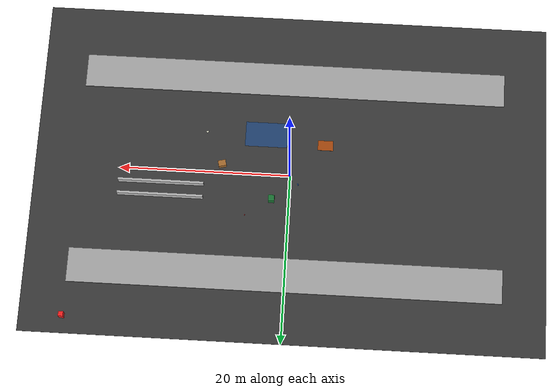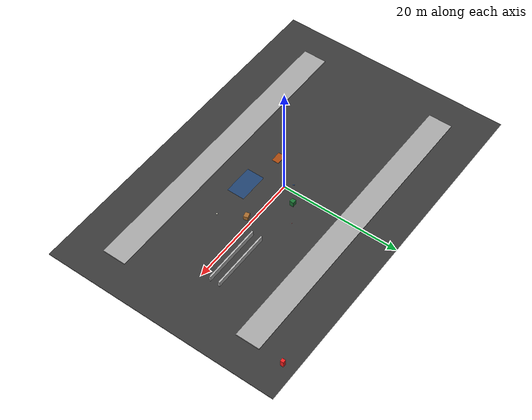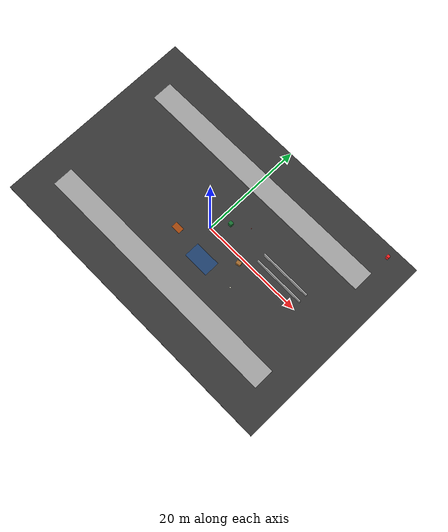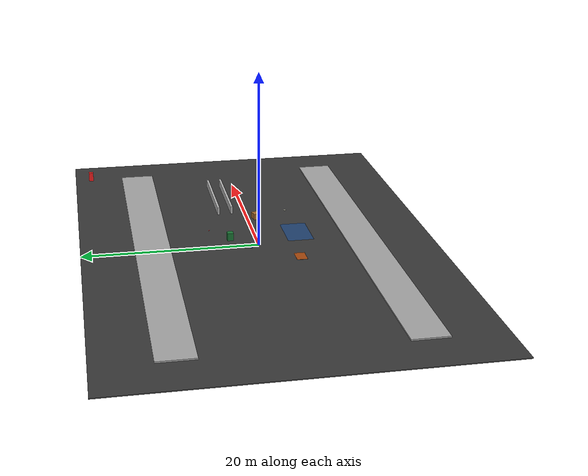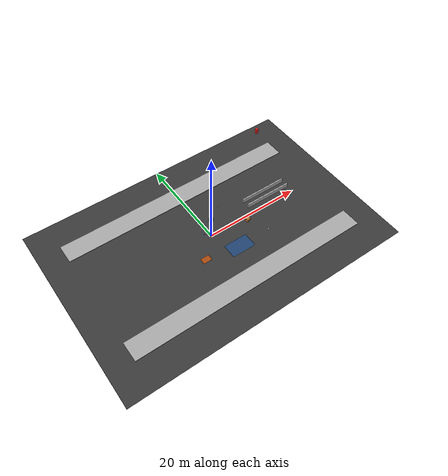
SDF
<?xml version="1.0"?>
<sdf version="1.9">
  <world name="sanitation_test_world">

    <plugin filename="gz-sim-physics-system" name="gz::sim::systems::Physics"/>
    <plugin filename="gz-sim-user-commands-system" name="gz::sim::systems::UserCommands"/>
    <plugin filename="gz-sim-scene-broadcaster-system" name="gz::sim::systems::SceneBroadcaster"/>
    <plugin filename="gz-sim-sensors-system" name="gz::sim::systems::Sensors">
      <render_engine>ogre2</render_engine>
    </plugin>
    <plugin filename="gz-sim-navsat-system" name="gz::sim::systems::NavSat"/>
    <spherical_coordinates>
      <surface_model>EARTH_WGS84</surface_model>
      <world_frame_orientation>ENU</world_frame_orientation>
      <latitude_deg>31.2304</latitude_deg>
      <longitude_deg>121.4737</longitude_deg>
      <elevation>0</elevation>
      <heading_deg>0</heading_deg>
    </spherical_coordinates>

    <gravity>0 0 -9.81</gravity>
    <physics name="1ms" type="ignored">
      <max_step_size>0.005</max_step_size>
      <real_time_update_rate>200</real_time_update_rate>
      <real_time_factor>1.0</real_time_factor>
    </physics>

    <scene>
      <ambient>0.65 0.65 0.65 1</ambient>
      <background>0.85 0.92 1.0 1</background>
      <shadows>true</shadows>
    </scene>

    <light type="directional" name="sun">
      <cast_shadows>true</cast_shadows>
      <pose>0 0 10 0 0 0</pose>
      <diffuse>0.9 0.9 0.9 1</diffuse>
      <specular>0.2 0.2 0.2 1</specular>
      <direction>-0.4 0.2 -1.0</direction>
    </light>

    <!-- Fixed orthographic-like overview evidence camera. The image is rendered
         by Gazebo / Ogre2; Stage4R stores its ROS image frames as PNG evidence. -->
    <model name="world_overview_camera">
      <static>true</static>
      <pose>0 0 28 0 1.57079632679 0</pose>
      <link name="link">
        <sensor name="overview" type="camera">
          <always_on>true</always_on>
          <update_rate>1</update_rate>
          <topic>world_overview/image</topic>
          <camera>
            <horizontal_fov>1.55</horizontal_fov>
            <image><width>960</width><height>640</height><format>R8G8B8</format></image>
            <clip><near>0.1</near><far>100</far></clip>
          </camera>
        </sensor>
      </link>
    </model>

    <!-- Asphalt ground -->
    <model name="asphalt_ground">
      <static>true</static>
      <link name="link">
        <collision name="collision">
          <geometry><box><size>60 40 0.10</size></box></geometry>
          <surface>
            <friction><ode><mu>0.85</mu><mu2>0.85</mu2></ode></friction>
          </surface>
        </collision>
        <visual name="visual">
          <geometry><box><size>60 40 0.10</size></box></geometry>
          <material>
            <ambient>0.18 0.18 0.18 1</ambient>
            <diffuse>0.22 0.22 0.22 1</diffuse>
          </material>
        </visual>
      </link>
      <pose>0 0 -0.05 0 0 0</pose>
    </model>

    <!-- Sidewalk strips and curbs -->
    <model name="north_sidewalk">
      <static>true</static>
      <pose>0 12 0.08 0 0 0</pose>
      <link name="link">
        <collision name="collision"><geometry><box><size>50 4 0.16</size></box></geometry></collision>
        <visual name="visual">
          <geometry><box><size>50 4 0.16</size></box></geometry>
          <material><ambient>0.55 0.55 0.55 1</ambient><diffuse>0.65 0.65 0.65 1</diffuse></material>
        </visual>
      </link>
    </model>

    <model name="south_sidewalk">
      <static>true</static>
      <pose>0 -12 0.08 0 0 0</pose>
      <link name="link">
        <collision name="collision"><geometry><box><size>50 4 0.16</size></box></geometry></collision>
        <visual name="visual">
          <geometry><box><size>50 4 0.16</size></box></geometry>
          <material><ambient>0.55 0.55 0.55 1</ambient><diffuse>0.65 0.65 0.65 1</diffuse></material>
        </visual>
      </link>
    </model>

    <!-- Narrow corridor walls -->
    <model name="corridor_wall_left">
      <static>true</static>
      <pose>15 3.2 0.45 0 0 0</pose>
      <link name="link">
        <collision name="collision"><geometry><box><size>10 0.25 0.9</size></box></geometry></collision>
        <visual name="visual"><geometry><box><size>10 0.25 0.9</size></box></geometry></visual>
      </link>
    </model>
    <model name="corridor_wall_right">
      <static>true</static>
      <pose>15 1.6 0.45 0 0 0</pose>
      <link name="link">
        <collision name="collision"><geometry><box><size>10 0.25 0.9</size></box></geometry></collision>
        <visual name="visual"><geometry><box><size>10 0.25 0.9</size></box></geometry></visual>
      </link>
    </model>

    <!-- Low-friction 1 cm puddle region -->
    <model name="puddle_zone">
      <static>true</static>
      <pose>3 -5 0.005 0 0 0</pose>
      <link name="link">
        <collision name="collision">
          <geometry><box><size>5 3 0.01</size></box></geometry>
          <surface>
            <friction><ode><mu>0.25</mu><mu2>0.25</mu2></ode></friction>
          </surface>
        </collision>
        <visual name="visual">
          <geometry><box><size>5 3 0.01</size></box></geometry>
          <material>
            <ambient>0.05 0.25 0.55 0.45</ambient>
            <diffuse>0.05 0.35 0.75 0.45</diffuse>
          </material>
          <transparency>0.55</transparency>
        </visual>
      </link>
    </model>

    <!-- Static obstacles -->
    <model name="trash_bin_obstacle">
      <static>true</static>
      <pose>2 3 0.45 0 0 0</pose>
      <link name="link">
        <collision name="collision"><geometry><box><size>0.7 0.7 0.9</size></box></geometry></collision>
        <visual name="visual">
          <geometry><box><size>0.7 0.7 0.9</size></box></geometry>
          <material><ambient>0.1 0.35 0.15 1</ambient><diffuse>0.1 0.45 0.2 1</diffuse></material>
        </visual>
      </link>
    </model>

    <model name="cardboard_box_obstacle">
      <static>true</static>
      <pose>8 -1 0.35 0 0 0.25</pose>
      <link name="link">
        <collision name="collision"><geometry><box><size>0.9 0.7 0.7</size></box></geometry></collision>
        <visual name="visual">
          <geometry><box><size>0.9 0.7 0.7</size></box></geometry>
          <material><ambient>0.55 0.32 0.12 1</ambient><diffuse>0.65 0.42 0.18 1</diffuse></material>
        </visual>
      </link>
    </model>

    <!-- Stage4R movable obstacle. It is static between explicit Gazebo
         SetPose commands so it does not contaminate the vehicle truth stream. -->
    <model name="dynamic_pedestrian_box">
      <static>true</static>
      <pose>25 18 0.55 0 0 0</pose>
      <link name="link">
        <collision name="collision"><geometry><box><size>0.55 0.55 1.10</size></box></geometry></collision>
        <visual name="visual">
          <geometry><box><size>0.55 0.55 1.10</size></box></geometry>
          <material><ambient>0.8 0.08 0.08 1</ambient><diffuse>0.95 0.12 0.12 1</diffuse></material>
        </visual>
      </link>
    </model>

    <!-- Discrete garbage objects with semantic model names -->
    <model name="trash_bottle_01">
      <static>true</static>
      <pose>-1 1 0.12 1.57 0 0.4</pose>
      <link name="link">
        <collision name="collision"><geometry><cylinder><radius>0.045</radius><length>0.24</length></cylinder></geometry></collision>
        <visual name="visual">
          <geometry><cylinder><radius>0.045</radius><length>0.24</length></cylinder></geometry>
          <material><ambient>0.1 0.35 0.8 1</ambient><diffuse>0.15 0.45 0.9 1</diffuse></material>
        </visual>
      </link>
    </model>

    <model name="trash_can_01">
      <static>true</static>
      <pose>5 5 0.055 1.57 0 0.2</pose>
      <link name="link">
        <collision name="collision"><geometry><cylinder><radius>0.035</radius><length>0.11</length></cylinder></geometry></collision>
        <visual name="visual">
          <geometry><cylinder><radius>0.035</radius><length>0.11</length></cylinder></geometry>
          <material><ambient>0.75 0.1 0.1 1</ambient><diffuse>0.9 0.15 0.15 1</diffuse></material>
        </visual>
      </link>
    </model>

    <model name="trash_paper_01">
      <static>true</static>
      <pose>10 -5 0.012 0 0 0.5</pose>
      <link name="link">
        <collision name="collision"><geometry><box><size>0.24 0.18 0.02</size></box></geometry></collision>
        <visual name="visual">
          <geometry><box><size>0.24 0.18 0.02</size></box></geometry>
          <material><ambient>0.9 0.9 0.8 1</ambient><diffuse>1 1 0.9 1</diffuse></material>
        </visual>
      </link>
    </model>

    <!-- Simplified leaf pile, under 3 cm high -->
    <model name="leaf_pile_01">
      <static>true</static>
      <pose>-4 -4 0.015 0 0 0</pose>
      <link name="link">
        <collision name="collision"><geometry><box><size>1.8 1.2 0.03</size></box></geometry></collision>
        <visual name="visual">
          <geometry><box><size>1.8 1.2 0.03</size></box></geometry>
          <material><ambient>0.45 0.18 0.03 1</ambient><diffuse>0.65 0.28 0.05 1</diffuse></material>
        </visual>
      </link>
    </model>

  </world>
</sdf>
